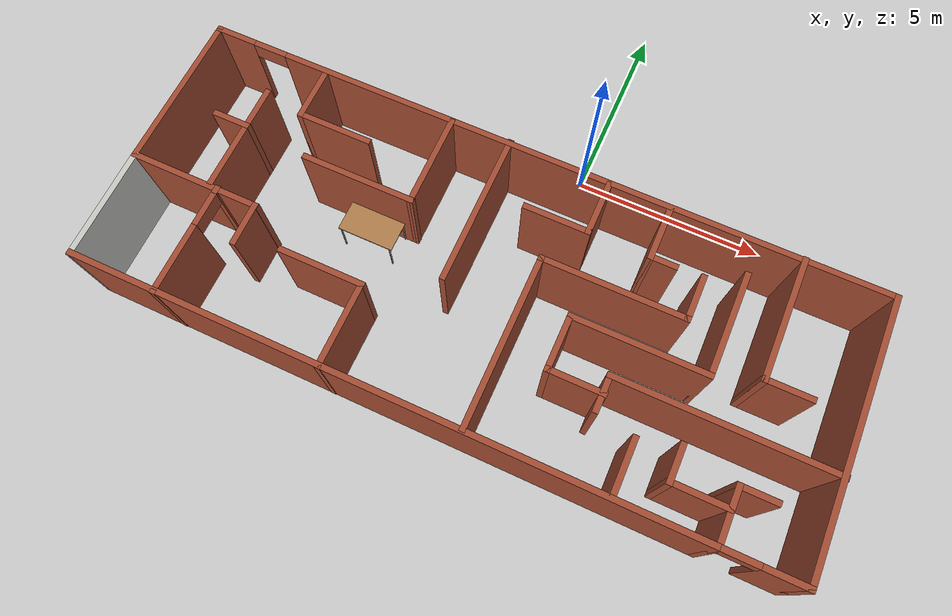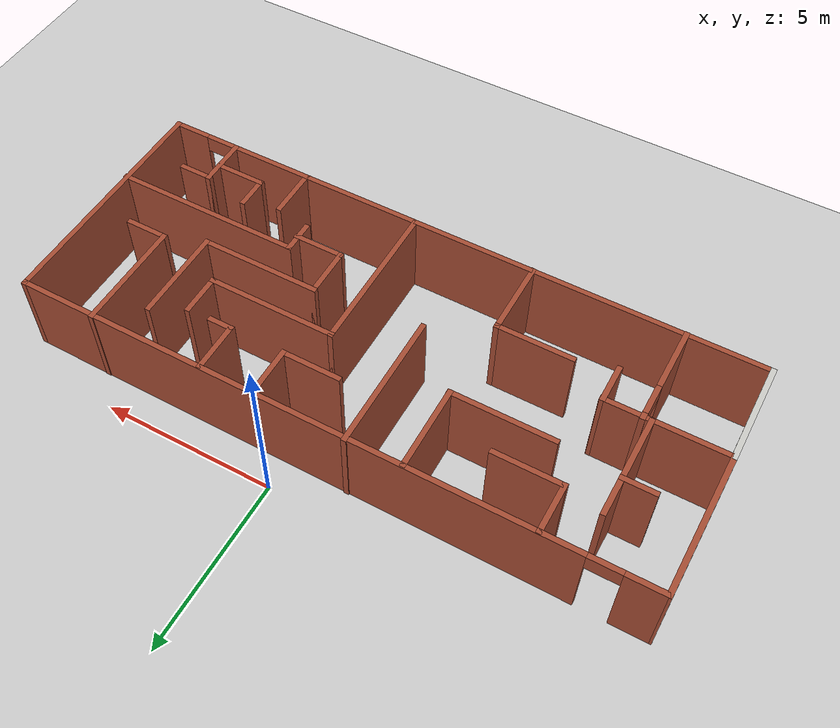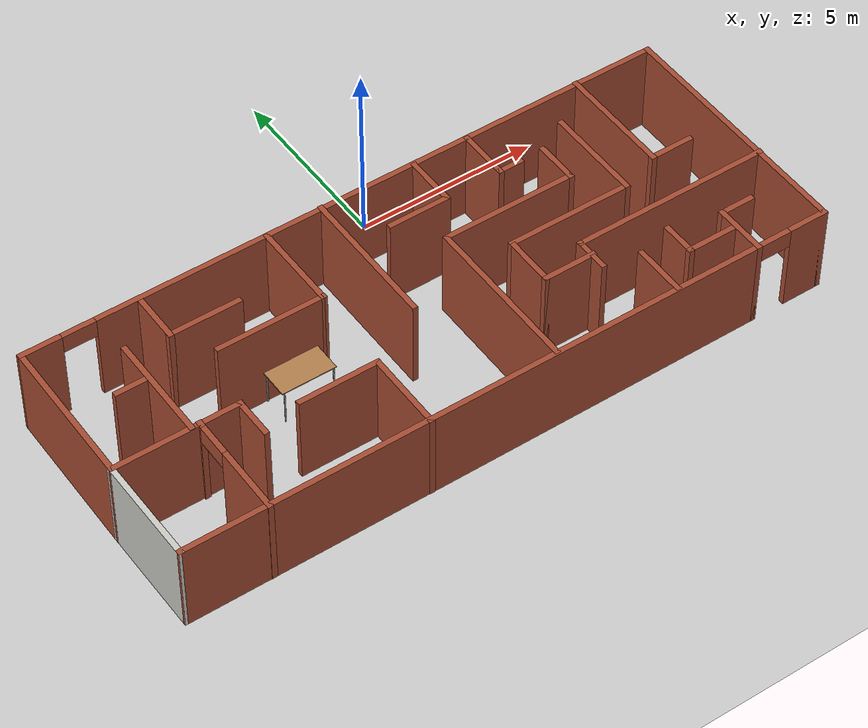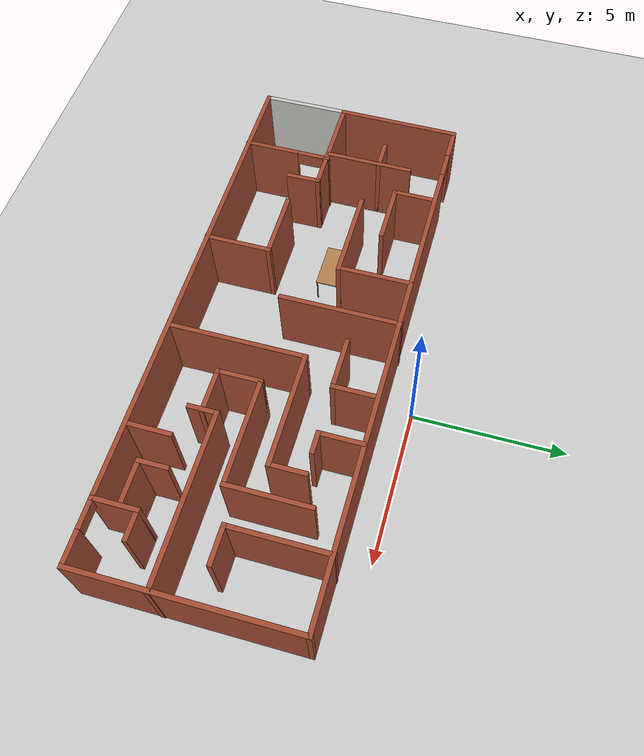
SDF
<sdf version="1.6">
 <world name="default">
  <light name="sun" type="directional">
   <pose>0 0 10 0 -0 0</pose>
   <diffuse>0.8 0.8 0.8 1</diffuse>
   <specular>0.2 0.2 0.2 1</specular>
   <attenuation>
    <range>1000</range>
    <constant>0.9</constant>
    <linear>0.01</linear>
    <quadratic>0.001</quadratic>
   </attenuation>
   <direction>-0.5 0.1 -0.9</direction>
  </light>
  <model name="ground_plane">
   <static>1</static>
   <link name="link">
    <collision name="collision">
     <geometry><plane><normal>0 0 1</normal><size>100 100</size></plane></geometry>
     <surface>
      <contact><collide_bitmask>65535</collide_bitmask></contact>
      <friction><ode><mu>100</mu><mu2>50</mu2></ode></friction>
     </surface>
    </collision>
    <visual name="visual">
     <cast_shadows>0</cast_shadows>
     <geometry><plane><normal>0 0 1</normal><size>100 100</size></plane></geometry>
     <material>
      <script><uri>file://media/materials/scripts/gazebo.material</uri><name>Gazebo/Grey</name></script>
     </material>
    </visual>
   </link>
  </model>
  <gravity>0 0 -9.8</gravity>
  <magnetic_field>6e-06 2.3e-05 -4.2e-05</magnetic_field>
  <atmosphere type="adiabatic"/>
  <physics name="default_physics" default="0" type="ode">
   <max_step_size>0.001</max_step_size>
   <real_time_factor>1</real_time_factor>
   <real_time_update_rate>1000</real_time_update_rate>
  </physics>
  <scene><ambient>0.4 0.4 0.4 1</ambient><background>0.7 0.7 0.7 1</background><shadows>1</shadows></scene>
  <audio><device>default</device></audio>
  <spherical_coordinates>
   <surface_model>EARTH_WGS84</surface_model>
   <latitude_deg>0</latitude_deg>
   <longitude_deg>0</longitude_deg>
   <elevation>0</elevation>
   <heading_deg>0</heading_deg>
  </spherical_coordinates>
  <model name="maze_building">
   <pose>-1.03527 -4.355 0 0 -0 0</pose>
   <link name="Wall_1">
    <pose>0.000265 -3.435 0 0 -0 0</pose>
    <visual name="Wall_1_Visual_0">
     <pose>-1.0125 0 1.25 0 -0 0</pose>
     <geometry><box><size>15.975 0.15 2.5</size></box></geometry>
     <material>
      <script><uri>file://media/materials/scripts/gazebo.material</uri><name>Gazebo/Bricks</name></script>
      <ambient>1 1 1 1</ambient>
     </material>
     <meta><layer>0</layer></meta>
    </visual>
    <collision name="Wall_1_Collision_0">
     <geometry><box><size>15.975 0.15 2.5</size></box></geometry>
     <pose>-1.0125 0 1.25 0 -0 0</pose>
    </collision>
    <visual name="Wall_1_Visual_1">
     <pose>8.4375 0 1.25 0 -0 0</pose>
     <geometry><box><size>1.125 0.15 2.5</size></box></geometry>
     <material>
      <script><uri>file://media/materials/scripts/gazebo.material</uri><name>Gazebo/Bricks</name></script>
      <ambient>1 1 1 1</ambient>
     </material>
     <meta><layer>0</layer></meta>
    </visual>
    <collision name="Wall_1_Collision_1">
     <geometry><box><size>1.125 0.15 2.5</size></box></geometry>
     <pose>8.4375 0 1.25 0 -0 0</pose>
    </collision>
    <visual name="Wall_1_Visual_2">
     <pose>7.425 0 2.25 0 -0 0</pose>
     <geometry><box><size>0.9 0.15 0.5</size></box></geometry>
     <material>
      <script><uri>file://media/materials/scripts/gazebo.material</uri><name>Gazebo/Bricks</name></script>
      <ambient>1 1 1 1</ambient>
     </material>
     <meta><layer>0</layer></meta>
    </visual>
    <collision name="Wall_1_Collision_2">
     <geometry><box><size>0.9 0.15 0.5</size></box></geometry>
     <pose>7.425 0 2.25 0 -0 0</pose>
    </collision>
   </link>
   <link name="Wall_10">
    <collision name="Wall_10_Collision">
     <geometry><box><size>2.49009 0.15 2.5</size></box></geometry>
     <pose>0 0 1.25 0 -0 0</pose>
    </collision>
    <visual name="Wall_10_Visual">
     <pose>0 0 1.25 0 -0 0</pose>
     <geometry><box><size>2.49009 0.15 2.5</size></box></geometry>
     <material>
      <script><uri>file://media/materials/scripts/gazebo.material</uri><name>Gazebo/Bricks</name></script>
      <ambient>1 1 1 1</ambient>
     </material>
     <meta><layer>0</layer></meta>
    </visual>
    <pose>-2.29974 2.215 0 0 -0 -1.56652</pose>
   </link>
   <link name="Wall_11">
    <collision name="Wall_11_Collision">
     <geometry><box><size>3 0.15 2.5</size></box></geometry>
     <pose>0 0 1.25 0 -0 0</pose>
    </collision>
    <visual name="Wall_11_Visual">
     <pose>0 0 1.25 0 -0 0</pose>
     <geometry><box><size>3 0.15 2.5</size></box></geometry>
     <material>
      <script><uri>file://media/materials/scripts/gazebo.material</uri><name>Gazebo/Bricks</name></script>
      <ambient>1 1 1 1</ambient>
     </material>
     <meta><layer>0</layer></meta>
    </visual>
    <pose>-3.70973 1.045 0 0 -0 3.14159</pose>
   </link>
   <link name="Wall_14">
    <collision name="Wall_14_Collision">
     <geometry><box><size>1.5 0.15 2.5</size></box></geometry>
     <pose>0 0 1.25 0 -0 0</pose>
    </collision>
    <visual name="Wall_14_Visual">
     <pose>0 0 1.25 0 -0 0</pose>
     <geometry><box><size>1.5 0.15 2.5</size></box></geometry>
     <material>
      <script><uri>file://media/materials/scripts/gazebo.material</uri><name>Gazebo/Bricks</name></script>
      <ambient>1 1 1 1</ambient>
     </material>
     <meta><layer>0</layer></meta>
    </visual>
    <pose>-5.80473 2.72 0 0 -0 -1.5708</pose>
   </link>
   <link name="Wall_15">
    <collision name="Wall_15_Collision">
     <geometry><box><size>2 0.15 2.5</size></box></geometry>
     <pose>0 0 1.25 0 -0 0</pose>
    </collision>
    <visual name="Wall_15_Visual">
     <pose>0 0 1.25 0 -0 0</pose>
     <geometry><box><size>2 0.15 2.5</size></box></geometry>
     <material>
      <script><uri>file://media/materials/scripts/gazebo.material</uri><name>Gazebo/Bricks</name></script>
      <ambient>1 1 1 1</ambient>
     </material>
     <meta><layer>0</layer></meta>
    </visual>
    <pose>-4.87974 2.045 0 0 -0 0</pose>
   </link>
   <link name="Wall_17">
    <collision name="Wall_17_Collision">
     <geometry><box><size>4.5 0.15 2.5</size></box></geometry>
     <pose>0 0 1.25 0 -0 0</pose>
    </collision>
    <visual name="Wall_17_Visual">
     <pose>0 0 1.25 0 -0 0</pose>
     <geometry><box><size>4.5 0.15 2.5</size></box></geometry>
     <material>
      <script><uri>file://media/materials/scripts/gazebo.material</uri><name>Gazebo/Bricks</name></script>
      <ambient>1 1 1 1</ambient>
     </material>
     <meta><layer>0</layer></meta>
    </visual>
    <pose>1.12526 -1.22 0 0 -0 1.5708</pose>
   </link>
   <link name="Wall_19">
    <collision name="Wall_19_Collision">
     <geometry><box><size>2.25 0.15 2.5</size></box></geometry>
     <pose>0 0 1.25 0 -0 0</pose>
    </collision>
    <visual name="Wall_19_Visual">
     <pose>0 0 1.25 0 -0 0</pose>
     <geometry><box><size>2.25 0.15 2.5</size></box></geometry>
     <material>
      <script><uri>file://media/materials/scripts/gazebo.material</uri><name>Gazebo/Bricks</name></script>
      <ambient>1 1 1 1</ambient>
     </material>
     <meta><layer>0</layer></meta>
    </visual>
    <pose>-2.38474 -2.395 0 0 -0 1.5708</pose>
   </link>
   <link name="Wall_2">
    <collision name="Wall_2_Collision">
     <geometry><box><size>7 0.15 2.5</size></box></geometry>
     <pose>0 0 1.25 0 -0 0</pose>
    </collision>
    <visual name="Wall_2_Visual">
     <pose>0 0 1.25 0 -0 0</pose>
     <geometry><box><size>7 0.15 2.5</size></box></geometry>
     <material>
      <script><uri>file://media/materials/scripts/gazebo.material</uri><name>Gazebo/Bricks</name></script>
      <ambient>1 1 1 1</ambient>
     </material>
     <meta><layer>0</layer></meta>
    </visual>
    <pose>8.92526 -0.01 0 0 -0 1.5708</pose>
   </link>
   <link name="Wall_20">
    <collision name="Wall_20_Collision">
     <geometry><box><size>2.25 0.15 2.5</size></box></geometry>
     <pose>0 0 1.25 0 -0 0</pose>
    </collision>
    <visual name="Wall_20_Visual">
     <pose>0 0 1.25 0 -0 0</pose>
     <geometry><box><size>2.25 0.15 2.5</size></box></geometry>
     <material>
      <script><uri>file://media/materials/scripts/gazebo.material</uri><name>Gazebo/Bricks</name></script>
      <ambient>1 1 1 1</ambient>
     </material>
     <meta><layer>0</layer></meta>
    </visual>
    <pose>-3.43473 -1.345 0 0 -0 3.14159</pose>
   </link>
   <link name="Wall_23">
    <collision name="Wall_23_Collision">
     <geometry><box><size>4 0.15 2.5</size></box></geometry>
     <pose>0 0 1.25 0 -0 0</pose>
    </collision>
    <visual name="Wall_23_Visual">
     <pose>0 0 1.25 0 -0 0</pose>
     <geometry><box><size>4 0.15 2.5</size></box></geometry>
     <material>
      <script><uri>file://media/materials/scripts/gazebo.material</uri><name>Gazebo/Bricks</name></script>
      <ambient>1 1 1 1</ambient>
     </material>
     <meta><layer>0</layer></meta>
    </visual>
    <pose>-0.754735 1.52 0 0 -0 -1.5708</pose>
   </link>
   <link name="Wall_25">
    <collision name="Wall_25_Collision">
     <geometry><box><size>3.75 0.15 2.5</size></box></geometry>
     <pose>0 0 1.25 0 -0 0</pose>
    </collision>
    <visual name="Wall_25_Visual">
     <pose>0 0 1.25 0 -0 0</pose>
     <geometry><box><size>3.75 0.15 2.5</size></box></geometry>
     <material>
      <script><uri>file://media/materials/scripts/gazebo.material</uri><name>Gazebo/Bricks</name></script>
      <ambient>1 1 1 1</ambient>
     </material>
     <meta><layer>0</layer></meta>
    </visual>
    <pose>2.92527 0.955 0 0 -0 0</pose>
   </link>
   <link name="Wall_26">
    <collision name="Wall_26_Collision">
     <geometry><box><size>1.25 0.15 2.5</size></box></geometry>
     <pose>0 0 1.25 0 -0 0</pose>
    </collision>
    <visual name="Wall_26_Visual">
     <pose>0 0 1.25 0 -0 0</pose>
     <geometry><box><size>1.25 0.15 2.5</size></box></geometry>
     <material>
      <script><uri>file://media/materials/scripts/gazebo.material</uri><name>Gazebo/Bricks</name></script>
      <ambient>1 1 1 1</ambient>
     </material>
     <meta><layer>0</layer></meta>
    </visual>
    <pose>4.72527 1.505 0 0 -0 1.5708</pose>
   </link>
   <link name="Wall_28">
    <collision name="Wall_28_Collision">
     <geometry><box><size>5.5 0.15 2.5</size></box></geometry>
     <pose>0 0 1.25 0 -0 0</pose>
    </collision>
    <visual name="Wall_28_Visual">
     <pose>0 0 1.25 0 -0 0</pose>
     <geometry><box><size>5.5 0.15 2.5</size></box></geometry>
     <material>
      <script><uri>file://media/materials/scripts/gazebo.material</uri><name>Gazebo/Bricks</name></script>
      <ambient>1 1 1 1</ambient>
     </material>
     <meta><layer>0</layer></meta>
    </visual>
    <pose>6.27027 -0.985 0 0 -0 3.14159</pose>
   </link>
   <link name="Wall_3">
    <pose>0.000265 3.415 0 0 -0 3.14159</pose>
    <visual name="Wall_3_Visual_0">
     <pose>-1.0125 0 1.25 0 -0 0</pose>
     <geometry><box><size>15.975 0.15 2.5</size></box></geometry>
     <material>
      <script><uri>file://media/materials/scripts/gazebo.material</uri><name>Gazebo/Bricks</name></script>
      <ambient>1 1 1 1</ambient>
     </material>
     <meta><layer>0</layer></meta>
    </visual>
    <collision name="Wall_3_Collision_0">
     <geometry><box><size>15.975 0.15 2.5</size></box></geometry>
     <pose>-1.0125 0 1.25 0 -0 0</pose>
    </collision>
    <visual name="Wall_3_Visual_1">
     <pose>8.4375 0 1.25 0 -0 0</pose>
     <geometry><box><size>1.125 0.15 2.5</size></box></geometry>
     <material>
      <script><uri>file://media/materials/scripts/gazebo.material</uri><name>Gazebo/Bricks</name></script>
      <ambient>1 1 1 1</ambient>
     </material>
     <meta><layer>0</layer></meta>
    </visual>
    <collision name="Wall_3_Collision_1">
     <geometry><box><size>1.125 0.15 2.5</size></box></geometry>
     <pose>8.4375 0 1.25 0 -0 0</pose>
    </collision>
    <visual name="Wall_3_Visual_2">
     <pose>7.425 0 2.25 0 -0 0</pose>
     <geometry><box><size>0.9 0.15 0.5</size></box></geometry>
     <material>
      <script><uri>file://media/materials/scripts/gazebo.material</uri><name>Gazebo/Bricks</name></script>
      <ambient>1 1 1 1</ambient>
     </material>
     <meta><layer>0</layer></meta>
    </visual>
    <collision name="Wall_3_Collision_2">
     <geometry><box><size>0.9 0.15 0.5</size></box></geometry>
     <pose>7.425 0 2.25 0 -0 0</pose>
    </collision>
   </link>
   <link name="Wall_31">
    <collision name="Wall_31_Collision">
     <geometry><box><size>3.25 0.15 2.5</size></box></geometry>
     <pose>0 0 1.25 0 -0 0</pose>
    </collision>
    <visual name="Wall_31_Visual">
     <pose>0 0 1.25 0 -0 0</pose>
     <geometry><box><size>3.25 0.15 2.5</size></box></geometry>
     <material>
      <script><uri>file://media/materials/scripts/gazebo.material</uri><name>Gazebo/Bricks</name></script>
      <ambient>1 1 1 1</ambient>
     </material>
     <meta><layer>0</layer></meta>
    </visual>
    <pose>6.73527 1.885 0 0 -0 -1.5708</pose>
   </link>
   <link name="Wall_32">
    <collision name="Wall_32_Collision">
     <geometry><box><size>1.25 0.15 2.5</size></box></geometry>
     <pose>0 0 1.25 0 -0 0</pose>
    </collision>
    <visual name="Wall_32_Visual">
     <pose>0 0 1.25 0 -0 0</pose>
     <geometry><box><size>1.25 0.15 2.5</size></box></geometry>
     <material>
      <script><uri>file://media/materials/scripts/gazebo.material</uri><name>Gazebo/Bricks</name></script>
      <ambient>1 1 1 1</ambient>
     </material>
     <meta><layer>0</layer></meta>
    </visual>
    <pose>7.28526 0.335 0 0 -0 0</pose>
   </link>
   <link name="Wall_38">
    <collision name="Wall_38_Collision">
     <geometry><box><size>1.5 0.15 2.5</size></box></geometry>
     <pose>0 0 1.25 0 -0 0</pose>
    </collision>
    <visual name="Wall_38_Visual">
     <pose>0 0 1.25 0 -0 0</pose>
     <geometry><box><size>1.5 0.15 2.5</size></box></geometry>
     <material>
      <script><uri>file://media/materials/scripts/gazebo.material</uri><name>Gazebo/Bricks</name></script>
      <ambient>1 1 1 1</ambient>
     </material>
     <meta><layer>0</layer></meta>
    </visual>
    <pose>6.94527 -2.76 0 0 -0 1.5708</pose>
   </link>
   <link name="Wall_39">
    <collision name="Wall_39_Collision">
     <geometry><box><size>1 0.15 2.5</size></box></geometry>
     <pose>0 0 1.25 0 -0 0</pose>
    </collision>
    <visual name="Wall_39_Visual">
     <pose>0 0 1.25 0 -0 0</pose>
     <geometry><box><size>1 0.15 2.5</size></box></geometry>
     <material>
      <script><uri>file://media/materials/scripts/gazebo.material</uri><name>Gazebo/Bricks</name></script>
      <ambient>1 1 1 1</ambient>
     </material>
     <meta><layer>0</layer></meta>
    </visual>
    <pose>7.37026 -2.085 0 0 -0 0</pose>
   </link>
   <link name="Wall_41">
    <collision name="Wall_41_Collision">
     <geometry><box><size>1.5 0.15 2.5</size></box></geometry>
     <pose>0 0 1.25 0 -0 0</pose>
    </collision>
    <visual name="Wall_41_Visual">
     <pose>0 0 1.25 0 -0 0</pose>
     <geometry><box><size>1.5 0.15 2.5</size></box></geometry>
     <material>
      <script><uri>file://media/materials/scripts/gazebo.material</uri><name>Gazebo/Bricks</name></script>
      <ambient>1 1 1 1</ambient>
     </material>
     <meta><layer>0</layer></meta>
    </visual>
    <pose>6.25026 -2.615 0 0 -0 3.14159</pose>
   </link>
   <link name="Wall_42">
    <collision name="Wall_42_Collision">
     <geometry><box><size>1 0.15 2.5</size></box></geometry>
     <pose>0 0 1.25 0 -0 0</pose>
    </collision>
    <visual name="Wall_42_Visual">
     <pose>0 0 1.25 0 -0 0</pose>
     <geometry><box><size>1 0.15 2.5</size></box></geometry>
     <material>
      <script><uri>file://media/materials/scripts/gazebo.material</uri><name>Gazebo/Bricks</name></script>
      <ambient>1 1 1 1</ambient>
     </material>
     <meta><layer>0</layer></meta>
    </visual>
    <pose>5.57526 -2.19 0 0 -0 1.5708</pose>
   </link>
   <link name="Wall_44">
    <collision name="Wall_44_Collision">
     <geometry><box><size>1.5 0.15 2.5</size></box></geometry>
     <pose>0 0 1.25 0 -0 0</pose>
    </collision>
    <visual name="Wall_44_Visual">
     <pose>0 0 1.25 0 -0 0</pose>
     <geometry><box><size>1.5 0.15 2.5</size></box></geometry>
     <material>
      <script><uri>file://media/materials/scripts/gazebo.material</uri><name>Gazebo/Bricks</name></script>
      <ambient>1 1 1 1</ambient>
     </material>
     <meta><layer>0</layer></meta>
    </visual>
    <pose>4.58526 -2.73 0 0 -0 1.5708</pose>
   </link>
   <link name="Wall_46">
    <collision name="Wall_46_Collision">
     <geometry><box><size>1 0.15 2.5</size></box></geometry>
     <pose>0 0 1.25 0 -0 0</pose>
    </collision>
    <visual name="Wall_46_Visual">
     <pose>0 0 1.25 0 -0 0</pose>
     <geometry><box><size>1 0.15 2.5</size></box></geometry>
     <material>
      <script><uri>file://media/materials/scripts/gazebo.material</uri><name>Gazebo/Bricks</name></script>
      <ambient>1 1 1 1</ambient>
     </material>
     <meta><layer>0</layer></meta>
    </visual>
    <pose>3.59526 -1.41 0 0 -0 -1.5708</pose>
   </link>
   <link name="Wall_48">
    <collision name="Wall_48_Collision">
     <geometry><box><size>1.5 0.15 2.5</size></box></geometry>
     <pose>0 0 1.25 0 -0 0</pose>
    </collision>
    <visual name="Wall_48_Visual">
     <pose>0 0 1.25 0 -0 0</pose>
     <geometry><box><size>1.5 0.15 2.5</size></box></geometry>
     <material>
      <script><uri>file://media/materials/scripts/gazebo.material</uri><name>Gazebo/Bricks</name></script>
      <ambient>1 1 1 1</ambient>
     </material>
     <meta><layer>0</layer></meta>
    </visual>
    <pose>2.95026 -1.425 0 0 -0 3.14159</pose>
   </link>
   <link name="Wall_49">
    <collision name="Wall_49_Collision">
     <geometry><box><size>1.5 0.15 2.5</size></box></geometry>
     <pose>0 0 1.25 0 -0 0</pose>
    </collision>
    <visual name="Wall_49_Visual">
     <pose>0 0 1.25 0 -0 0</pose>
     <geometry><box><size>1.5 0.15 2.5</size></box></geometry>
     <material>
      <script><uri>file://media/materials/scripts/gazebo.material</uri><name>Gazebo/Bricks</name></script>
      <ambient>1 1 1 1</ambient>
     </material>
     <meta><layer>0</layer></meta>
    </visual>
    <pose>2.27527 -0.75 0 0 -0 1.5708</pose>
   </link>
   <link name="Wall_50">
    <collision name="Wall_50_Collision">
     <geometry><box><size>3.5 0.15 2.5</size></box></geometry>
     <pose>0 0 1.25 0 -0 0</pose>
    </collision>
    <visual name="Wall_50_Visual">
     <pose>0 0 1.25 0 -0 0</pose>
     <geometry><box><size>3.5 0.15 2.5</size></box></geometry>
     <material>
      <script><uri>file://media/materials/scripts/gazebo.material</uri><name>Gazebo/Bricks</name></script>
      <ambient>1 1 1 1</ambient>
     </material>
     <meta><layer>0</layer></meta>
    </visual>
    <pose>3.95026 -0.075 0 0 -0 0</pose>
   </link>
   <link name="Wall_51">
    <collision name="Wall_51_Collision">
     <geometry><box><size>2.75 0.15 2.5</size></box></geometry>
     <pose>0 0 1.25 0 -0 0</pose>
    </collision>
    <visual name="Wall_51_Visual">
     <pose>0 0 1.25 0 -0 0</pose>
     <geometry><box><size>2.75 0.15 2.5</size></box></geometry>
     <material>
      <script><uri>file://media/materials/scripts/gazebo.material</uri><name>Gazebo/Bricks</name></script>
      <ambient>1 1 1 1</ambient>
     </material>
     <meta><layer>0</layer></meta>
    </visual>
    <pose>5.62526 1.225 0 0 -0 1.5708</pose>
   </link>
   <link name="Wall_53">
    <collision name="Wall_53_Collision">
     <geometry><box><size>1.5 0.15 2.5</size></box></geometry>
     <pose>0 0 1.25 0 -0 0</pose>
    </collision>
    <visual name="Wall_53_Visual">
     <pose>0 0 1.25 0 -0 0</pose>
     <geometry><box><size>1.5 0.15 2.5</size></box></geometry>
     <material>
      <script><uri>file://media/materials/scripts/gazebo.material</uri><name>Gazebo/Bricks</name></script>
      <ambient>1 1 1 1</ambient>
     </material>
     <meta><layer>0</layer></meta>
    </visual>
    <pose>1.87526 2.7 0 0 -0 -1.5708</pose>
   </link>
   <link name="Wall_54">
    <collision name="Wall_54_Collision">
     <geometry><box><size>1.75 0.15 2.5</size></box></geometry>
     <pose>0 0 1.25 0 -0 0</pose>
    </collision>
    <visual name="Wall_54_Visual">
     <pose>0 0 1.25 0 -0 0</pose>
     <geometry><box><size>1.75 0.15 2.5</size></box></geometry>
     <material>
      <script><uri>file://media/materials/scripts/gazebo.material</uri><name>Gazebo/Bricks</name></script>
      <ambient>1 1 1 1</ambient>
     </material>
     <meta><layer>0</layer></meta>
    </visual>
    <pose>1.07526 2.025 0 0 -0 3.14159</pose>
   </link>
   <link name="Wall_56">
    <collision name="Wall_56_Collision">
     <geometry><box><size>1.5 0.15 2.5</size></box></geometry>
     <pose>0 0 1.25 0 -0 0</pose>
    </collision>
    <visual name="Wall_56_Visual">
     <pose>0 0 1.25 0 -0 0</pose>
     <geometry><box><size>1.5 0.15 2.5</size></box></geometry>
     <material>
      <script><uri>file://media/materials/scripts/gazebo.material</uri><name>Gazebo/Bricks</name></script>
      <ambient>1 1 1 1</ambient>
     </material>
     <meta><layer>0</layer></meta>
    </visual>
    <pose>3.43526 2.71 0 0 -0 -1.5708</pose>
   </link>
   <link name="Wall_57">
    <collision name="Wall_57_Collision">
     <geometry><box><size>0.75 0.15 2.5</size></box></geometry>
     <pose>0 0 1.25 0 -0 0</pose>
    </collision>
    <visual name="Wall_57_Visual">
     <pose>0 0 1.25 0 -0 0</pose>
     <geometry><box><size>0.75 0.15 2.5</size></box></geometry>
     <material>
      <script><uri>file://media/materials/scripts/gazebo.material</uri><name>Gazebo/Bricks</name></script>
      <ambient>1 1 1 1</ambient>
     </material>
     <meta><layer>0</layer></meta>
    </visual>
    <pose>3.73527 2.035 0 0 -0 0</pose>
   </link>
   <link name="Wall_59">
    <collision name="Wall_59_Collision">
     <geometry><box><size>3 0.15 2.5</size></box></geometry>
     <pose>0 0 1.25 0 -0 0</pose>
    </collision>
    <visual name="Wall_59_Visual">
     <pose>0 0 1.25 0 -0 0</pose>
     <geometry><box><size>3 0.15 2.5</size></box></geometry>
     <material>
      <script><uri>file://media/materials/scripts/gazebo.material</uri><name>Gazebo/Bricks</name></script>
      <ambient>1 1 1 1</ambient>
     </material>
     <meta><layer>0</layer></meta>
    </visual>
    <pose>-6.87474 0.83 0 0 -0 1.5708</pose>
   </link>
   <link name="Wall_61">
    <collision name="Wall_61_Collision">
     <geometry><box><size>1 0.15 2.5</size></box></geometry>
     <pose>0 0 1.25 0 -0 0</pose>
    </collision>
    <visual name="Wall_61_Visual">
     <pose>0 0 1.25 0 -0 0</pose>
     <geometry><box><size>1 0.15 2.5</size></box></geometry>
     <material>
      <script><uri>file://media/materials/scripts/gazebo.material</uri><name>Gazebo/Bricks</name></script>
      <ambient>1 1 1 1</ambient>
     </material>
     <meta><layer>0</layer></meta>
    </visual>
    <pose>-7.29974 1.205 0 0 -0 0</pose>
   </link>
   <link name="Wall_67">
    <pose>-6.65473 -2.02 0 0 -0 1.5708</pose>
    <visual name="Wall_67_Visual_0">
     <pose>-0.5575 0 1.25 0 -0 0</pose>
     <geometry><box><size>1.885 0.15 2.5</size></box></geometry>
     <material>
      <script><uri>file://media/materials/scripts/gazebo.material</uri><name>Gazebo/Bricks</name></script>
      <ambient>1 1 1 1</ambient>
     </material>
     <meta><layer>0</layer></meta>
    </visual>
    <collision name="Wall_67_Collision_0">
     <geometry><box><size>1.885 0.15 2.5</size></box></geometry>
     <pose>-0.5575 0 1.25 0 -0 0</pose>
    </collision>
    <visual name="Wall_67_Visual_1">
     <pose>1.3925 0 1.25 0 -0 0</pose>
     <geometry><box><size>0.215 0.15 2.5</size></box></geometry>
     <material>
      <script><uri>file://media/materials/scripts/gazebo.material</uri><name>Gazebo/Bricks</name></script>
      <ambient>1 1 1 1</ambient>
     </material>
     <meta><layer>0</layer></meta>
    </visual>
    <collision name="Wall_67_Collision_1">
     <geometry><box><size>0.215 0.15 2.5</size></box></geometry>
     <pose>1.3925 0 1.25 0 -0 0</pose>
    </collision>
    <visual name="Wall_67_Visual_2">
     <pose>0.835 0 2.25 0 -0 0</pose>
     <geometry><box><size>0.9 0.15 0.5</size></box></geometry>
     <material>
      <script><uri>file://media/materials/scripts/gazebo.material</uri><name>Gazebo/Bricks</name></script>
      <ambient>1 1 1 1</ambient>
     </material>
     <meta><layer>0</layer></meta>
    </visual>
    <collision name="Wall_67_Collision_2">
     <geometry><box><size>0.9 0.15 0.5</size></box></geometry>
     <pose>0.835 0 2.25 0 -0 0</pose>
    </collision>
   </link>
   <link name="Wall_69">
    <collision name="Wall_69_Collision">
     <geometry><box><size>4.18005 0.15 2.5</size></box></geometry>
     <pose>0 0 1.25 0 -0 0</pose>
    </collision>
    <visual name="Wall_69_Visual">
     <pose>0 0 1.25 0 -0 0</pose>
     <geometry><box><size>4.18005 0.15 2.5</size></box></geometry>
     <material>
      <script><uri>file://media/materials/scripts/gazebo.material</uri><name>Gazebo/Bricks</name></script>
      <ambient>1 1 1 1</ambient>
     </material>
     <meta><layer>0</layer></meta>
    </visual>
    <pose>-8.93473 1.4 0 0 -0 -1.57576</pose>
   </link>
   <link name="Wall_7">
    <collision name="Wall_7_Collision">
     <geometry><box><size>3.5 0.15 2.5</size></box></geometry>
     <pose>0 0 1.25 0 -0 0</pose>
    </collision>
    <visual name="Wall_7_Visual">
     <pose>0 0 1.25 0 -0 0</pose>
     <geometry><box><size>3.5 0.15 2.5</size></box></geometry>
     <material>
      <script><uri>file://media/materials/scripts/gazebo.material</uri><name>Gazebo/Bricks</name></script>
      <ambient>1 1 1 1</ambient>
     </material>
     <meta><layer>0</layer></meta>
    </visual>
    <pose>-7.26973 -0.615 0 0 -0 0</pose>
   </link>
   <link name="Wall_70">
    <collision name="Wall_70_Collision">
     <geometry><box><size>2.97007 0.15 2.5</size></box></geometry>
     <pose>0 0 1.25 0 -0 0</pose>
    </collision>
    <visual name="Wall_70_Visual">
     <pose>0 0 1.25 0 -0 0</pose>
     <geometry><box><size>2.97007 0.15 2.5</size></box></geometry>
     <material>
      <script><uri>file://media/materials/scripts/gazebo.material</uri><name>Gazebo/CeilingTiled</name></script>
      <ambient>1 1 1 1</ambient>
     </material>
     <meta><layer>0</layer></meta>
    </visual>
    <pose>-8.93473 -2.025 0 0 -0 -1.5637</pose>
   </link>
   <link name="Wall_8">
    <collision name="Wall_8_Collision">
     <geometry><box><size>1.17078 0.15 2.5</size></box></geometry>
     <pose>0 0 1.25 0 -0 0</pose>
    </collision>
    <visual name="Wall_8_Visual">
     <pose>0 0 1.25 0 -0 0</pose>
     <geometry><box><size>1.17078 0.15 2.5</size></box></geometry>
     <material>
      <script><uri>file://media/materials/scripts/gazebo.material</uri><name>Gazebo/Bricks</name></script>
      <ambient>1 1 1 1</ambient>
     </material>
     <meta><layer>0</layer></meta>
    </visual>
    <pose>-5.59973 -1.125 0 0 -0 -1.56099</pose>
   </link>
   <static>1</static>
  </model>
  <model name="table">
   <static>1</static>
   <link name="link">
    <collision name="surface">
     <pose>0 0 1 0 -0 0</pose>
     <geometry><box><size>1.5 0.8 0.03</size></box></geometry>
     <surface><friction><ode><mu>0.6</mu><mu2>0.6</mu2></ode></friction></surface>
    </collision>
    <visual name="visual1">
     <pose>0 0 1 0 -0 0</pose>
     <geometry><box><size>1.5 0.8 0.03</size></box></geometry>
     <material>
      <script><uri>file://media/materials/scripts/gazebo.material</uri><name>Gazebo/Wood</name></script>
     </material>
    </visual>
    <collision name="front_left_leg">
     <pose>0.68 0.38 0.5 0 -0 0</pose>
     <geometry><cylinder><radius>0.02</radius><length>1</length></cylinder></geometry>
    </collision>
    <visual name="front_left_leg">
     <pose>0.68 0.38 0.5 0 -0 0</pose>
     <geometry><cylinder><radius>0.02</radius><length>1</length></cylinder></geometry>
     <material>
      <script><uri>file://media/materials/scripts/gazebo.material</uri><name>Gazebo/Grey</name></script>
     </material>
    </visual>
    <collision name="front_right_leg">
     <pose>0.68 -0.38 0.5 0 -0 0</pose>
     <geometry><cylinder><radius>0.02</radius><length>1</length></cylinder></geometry>
    </collision>
    <visual name="front_right_leg">
     <pose>0.68 -0.38 0.5 0 -0 0</pose>
     <geometry><cylinder><radius>0.02</radius><length>1</length></cylinder></geometry>
     <material>
      <script><uri>file://media/materials/scripts/gazebo.material</uri><name>Gazebo/Grey</name></script>
     </material>
    </visual>
    <collision name="back_right_leg">
     <pose>-0.68 -0.38 0.5 0 -0 0</pose>
     <geometry><cylinder><radius>0.02</radius><length>1</length></cylinder></geometry>
    </collision>
    <visual name="back_right_leg">
     <pose>-0.68 -0.38 0.5 0 -0 0</pose>
     <geometry><cylinder><radius>0.02</radius><length>1</length></cylinder></geometry>
     <material>
      <script><uri>file://media/materials/scripts/gazebo.material</uri><name>Gazebo/Grey</name></script>
     </material>
    </visual>
    <collision name="back_left_leg">
     <pose>-0.68 0.38 0.5 0 -0 0</pose>
     <geometry><cylinder><radius>0.02</radius><length>1</length></cylinder></geometry>
    </collision>
    <visual name="back_left_leg">
     <pose>-0.68 0.38 0.5 0 -0 0</pose>
     <geometry><cylinder><radius>0.02</radius><length>1</length></cylinder></geometry>
     <material>
      <script><uri>file://media/materials/scripts/gazebo.material</uri><name>Gazebo/Grey</name></script>
     </material>
    </visual>
   </link>
   <pose>-4.31486 -3.78242 0 0 -0 0</pose>
  </model>
 </world>
</sdf>
